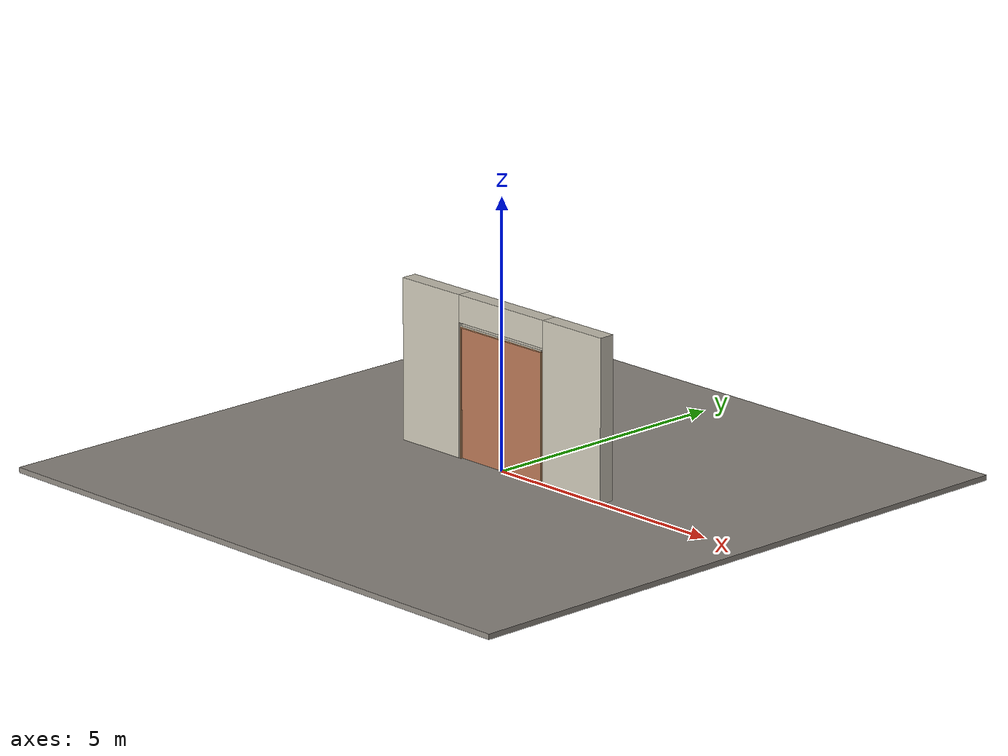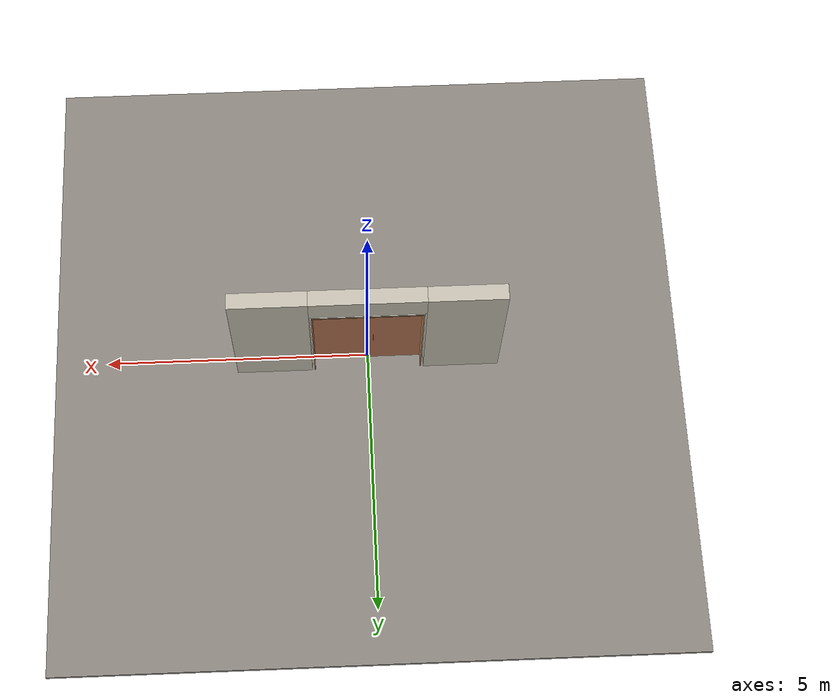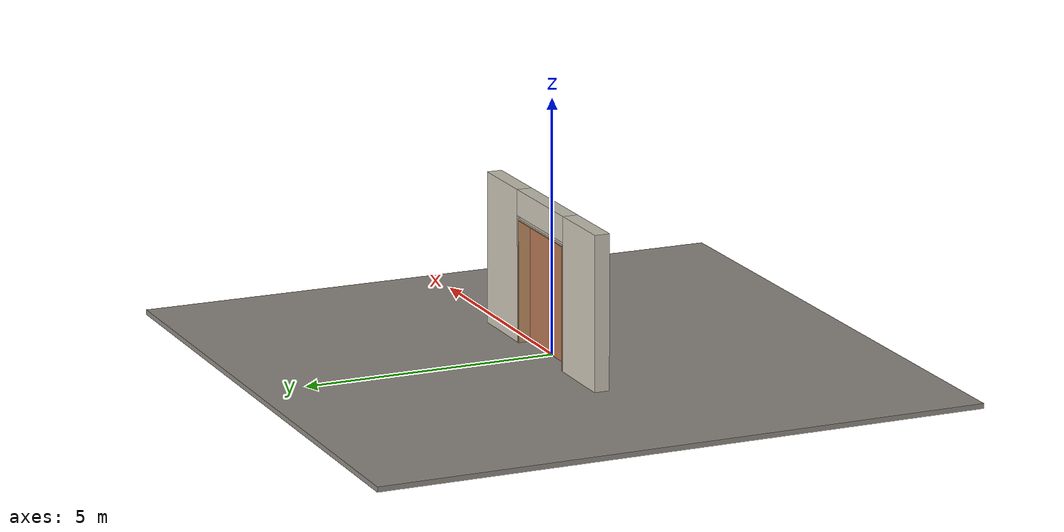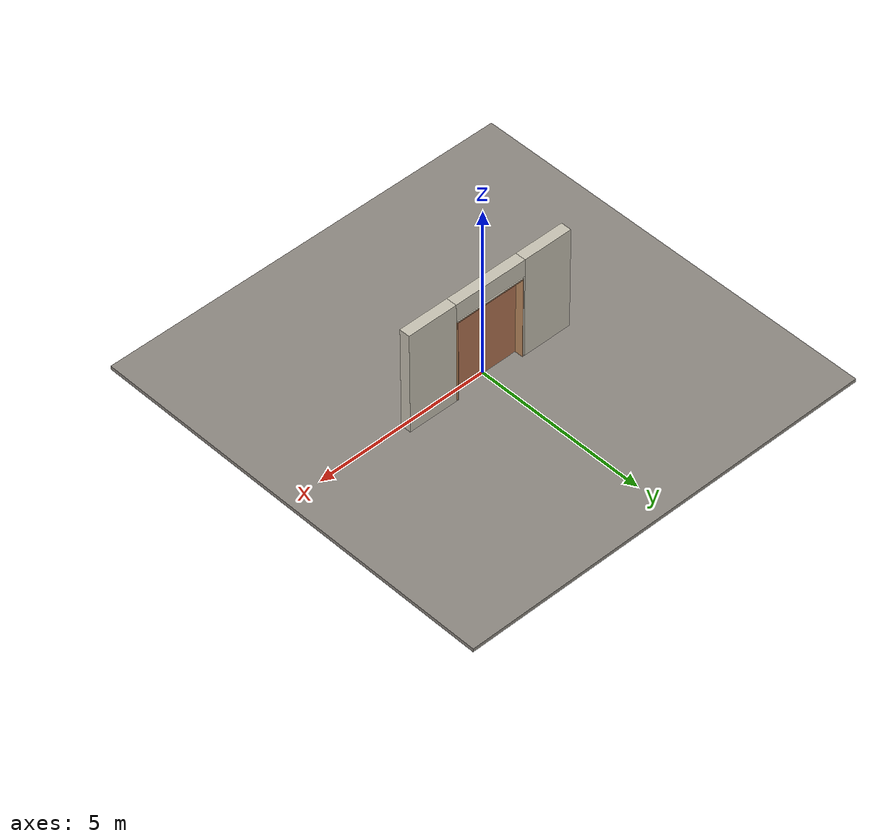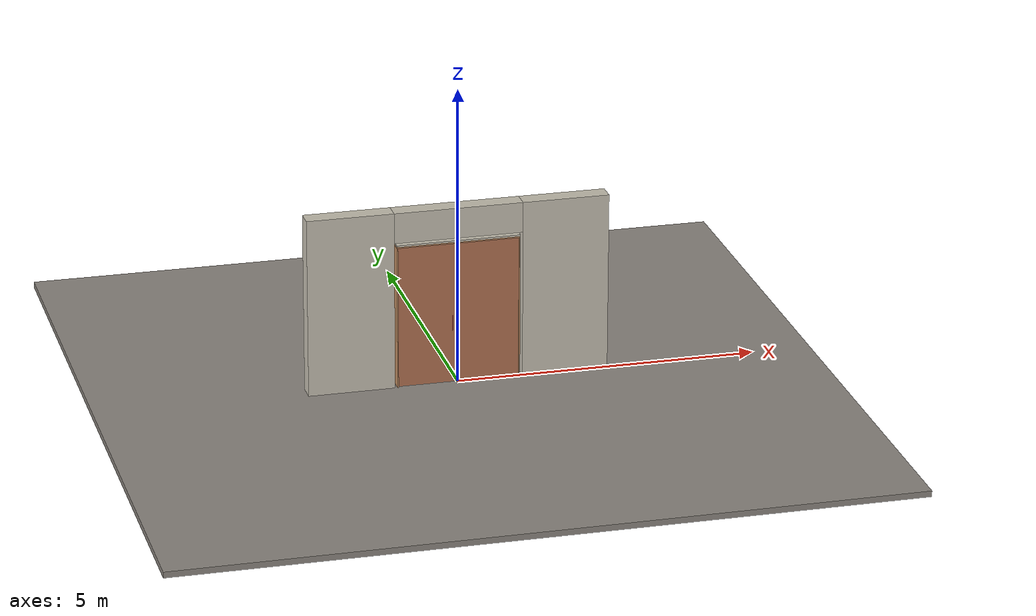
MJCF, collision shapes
<?xml version="1.0" ?>
<mujoco model="db0467_swing_double_minimal">
  <compiler angle="radian" meshdir="../../hardware" texturedir="../../textures" autolimits="true" inertiafromgeom="false"/>
  <option timestep="0.002" integrator="implicitfast" cone="elliptic" impratio="10" noslip_iterations="3">
    <flag multiccd="enable"/>
  </option>
  <size memory="16M"/>
  <default>
    <geom condim="4" solref="0.005 1" solimp="0.95 0.99 0.001"/>
    <joint solreflimit="0.005 1" solimplimit="0.95 0.99 0.001"/>
    <tendon solreflimit="0.005 1"/>
    <equality solref="0.002 1"/>
  </default>
  <visual>
    <headlight ambient="0.4 0.4 0.4" diffuse="0.7 0.7 0.7" specular="0.2 0.2 0.2"/>
    <quality shadowsize="4096"/>
    <map znear="0.01" zfar="60"/>
  </visual>
  <asset>
    <mesh name="pull_2b47e55ff8" file="pull_2b47e55ff8.obj"/>
    <material name="mat_floor" rgba="0.55 0.53 0.5 1" specular="0.2" shininess="0.15" reflectance="0"/>
    <material name="mat_wall" rgba="0.78 0.76 0.7 1" specular="0.2" shininess="0.1" reflectance="0"/>
    <material name="mat_leaf_a" rgba="0.7 0.45 0.32 1" specular="0.2" shininess="0.4" reflectance="0"/>
    <material name="mat_leaf_a_brace" rgba="0.63 0.405 0.288 1" specular="0.2" shininess="0.2" reflectance="0"/>
    <material name="mat_hinge" rgba="0.65 0.66 0.68 1" specular="0.74" shininess="0.5" reflectance="0.36"/>
    <material name="mat_op_black_matte_metal" rgba="0.05 0.05 0.05 1" specular="0.38" shininess="0.3" reflectance="0.12"/>
    <material name="mat_leaf_b" rgba="0.7 0.45 0.32 1" specular="0.2" shininess="0.4" reflectance="0"/>
    <material name="mat_leaf_b_brace" rgba="0.63 0.405 0.288 1" specular="0.2" shininess="0.2" reflectance="0"/>
    <material name="mat_frame" rgba="0.75 0.55 0.38 1" specular="0.2" shininess="0.45" reflectance="0"/>
    <texture name="skybox" type="skybox" builtin="gradient" rgb1="0.6 0.7 0.85" rgb2="0.9 0.92 0.95" width="256" height="256"/>
  </asset>
  <worldbody>
    <light name="sun" pos="1.5 -2.5 4" dir="-0.3 0.5 -0.8" directional="true" diffuse="0.8 0.8 0.8" specular="0.3 0.3 0.3" castshadow="true"/>
    <light name="fill" pos="-1.5 2.5 3" dir="0.3 -0.5 -0.7" directional="true" diffuse="0.35 0.35 0.4" castshadow="false"/>
    <camera name="robot_view" pos="0 -2.779187 2.014912" xyaxes="1 0 0 0 0.26963 0.962964" fovy="52"/>
    <camera name="far_view" pos="0 2.995187 2.014912" xyaxes="-1 0 0 0 -0.26963 0.962964" fovy="52"/>
    <camera name="iso" pos="-2.194262 -2.317237 2.476863" xyaxes="0.741536 -0.670913 0 0.242917 0.268487 0.932151" fovy="46"/>
    <camera name="detail_handle" pos="0.0735 -0.867 1.33" xyaxes="0.97561 0.219512 0 -0.070934 0.315262 0.94635" fovy="38"/>
    <geom name="floor" type="box" size="6 6 0.05" pos="0 0 -0.05" material="mat_floor" group="0" contype="1" conaffinity="1" friction="0.8 0.005 0.0001" density="2400"/>
    <geom name="wall_left" type="box" size="0.71775 0.15 1.5065" pos="-1.78225 0.108 1.5065" material="mat_wall" group="0" contype="1" conaffinity="1" friction="0.6 0.005 0.0001" density="800"/>
    <geom name="wall_right" type="box" size="0.71775 0.15 1.5065" pos="1.78225 0.108 1.5065" material="mat_wall" group="0" contype="1" conaffinity="1" friction="0.6 0.005 0.0001" density="800"/>
    <geom name="wall_header" type="box" size="1.0645 0.15 0.255" pos="0 0.108 2.758" material="mat_wall" group="0" contype="1" conaffinity="1" friction="0.6 0.005 0.0001" density="800"/>
    <geom name="jamb_l" type="box" size="0.0095 0.15 1.2065" pos="-1.014 0.108 1.2065" material="mat_frame" group="0" contype="1" conaffinity="1" friction="0.6 0.005 0.0001" density="300"/>
    <geom name="jamb_r" type="box" size="0.0095 0.15 1.2065" pos="1.014 0.108 1.2065" material="mat_frame" group="0" contype="1" conaffinity="1" friction="0.6 0.005 0.0001" density="300"/>
    <geom name="jamb_head" type="box" size="1.0235 0.15 0.0095" pos="0 0.108 2.4225" material="mat_frame" group="0" contype="1" conaffinity="1" friction="0.6 0.005 0.0001" density="300"/>
    <geom name="head_stud" type="box" size="1.0235 0.15 0.015" pos="0 0.108 2.447" material="mat_wall" group="0" contype="1" conaffinity="1" friction="0.6 0.005 0.0001" density="500"/>
    <site name="approach_point" pos="0 -1.5 0" quat="1 0 0 0" size="0.05" rgba="0.2 0.9 0.2 0.5" group="4"/>
    <site name="goal_point" pos="0 1.5 0" quat="1 0 0 0" size="0.05" rgba="0.2 0.9 0.2 0.5" group="4"/>
    <site name="door_plane_center" pos="0 0 1.2065" quat="1 0 0 0" size="0.02" rgba="0.2 0.9 0.2 0.5" group="4"/>
    <site name="approach_point_2" pos="0 -1.5 0" quat="1 0 0 0" size="0.05" rgba="0.2 0.9 0.2 0.5" group="4"/>
    <site name="goal_point_2" pos="0 1.5 0" quat="1 0 0 0" size="0.05" rgba="0.2 0.9 0.2 0.5" group="4"/>
    <site name="door_plane_center_2" pos="0 0 1.2065" quat="1 0 0 0" size="0.02" rgba="0.2 0.9 0.2 0.5" group="4"/>
    <site name="approach_point_3" pos="0 -1.5 0" quat="1 0 0 0" size="0.05" rgba="0.2 0.9 0.2 0.5" group="4"/>
    <site name="goal_point_3" pos="0 1.5 0" quat="1 0 0 0" size="0.05" rgba="0.2 0.9 0.2 0.5" group="4"/>
    <site name="door_plane_center_3" pos="0 0 1.2065" quat="1 0 0 0" size="0.02" rgba="0.2 0.9 0.2 0.5" group="4"/>
    <body name="leaf_a" pos="-1.0045 0 0">
      <inertial pos="0.513287 0 1.204859" mass="39.041292" quat="0.501038 0.501038 0.49896 -0.49896" diaginertia="3.332902182 18.297652232 21.610812581"/>
      <joint name="leaf_a_hinge" type="hinge" axis="0 0 -1" pos="0.003 -0.029 0" limited="true" range="0 1.396263" damping="0.48344" frictionloss="10.213386" armature="0.02"/>
      <geom name="leaf_a_slab" type="box" size="0.5 0.022 1.2" pos="0.503 0 1.209" material="mat_leaf_a" group="0" contype="1" conaffinity="1" friction="0.35 0.005 0.0001" density="1"/>
      <geom name="leaf_a_pull_n" type="mesh" mesh="pull_2b47e55ff8" pos="0.898 -0.022 1.05" quat="0.707107 0.707107 0 0" material="mat_op_black_matte_metal" group="1" contype="0" conaffinity="0" density="3000"/>
      <geom name="leaf_a_pull_col_n" type="capsule" size="0.006 0.13" pos="0.898 -0.067 1.05" material="mat_op_black_matte_metal" group="3" contype="1" conaffinity="1" rgba="0.8 0.3 0.3 0.25" friction="0.7 0.01 0.0001" density="3000"/>
      <geom name="leaf_a_pull_p" type="mesh" mesh="pull_2b47e55ff8" pos="0.898 0.022 1.05" quat="-0.707107 0.707107 0 0" material="mat_op_black_matte_metal" group="1" contype="0" conaffinity="0" density="3000"/>
      <geom name="leaf_a_pull_col_p" type="capsule" size="0.006 0.13" pos="0.898 0.067 1.05" material="mat_op_black_matte_metal" group="3" contype="1" conaffinity="1" rgba="0.8 0.3 0.3 0.25" friction="0.7 0.01 0.0001" density="3000"/>
      <site name="leaf_a_pull_grip_n" pos="0.898 -0.067 1.05" quat="1 0 0 0" size="0.012" rgba="0.2 0.9 0.2 0.5" group="4"/>
      <site name="leaf_a_pull_grip_p" pos="0.898 0.067 1.05" quat="1 0 0 0" size="0.012" rgba="0.2 0.9 0.2 0.5" group="4"/>
      <site name="leaf_a_edge_mid" pos="1.003 0 1.2" quat="1 0 0 0" size="0.02" rgba="0.2 0.9 0.2 0.5" group="4"/>
    </body>
    <body name="leaf_b" pos="1.0045 0 0">
      <inertial pos="-0.503 0 1.209" mass="38.928708" quat="-0.5 0.5 0.5 0.5" diaginertia="3.250339494 18.692060312 21.929838809"/>
      <joint name="leaf_b_hinge" type="hinge" axis="0 0 1" pos="-0.003 -0.029 0" limited="true" range="0 0.001" damping="0.48344" frictionloss="10.213386" armature="0.02"/>
      <geom name="leaf_b_slab" type="box" size="0.5 0.022 1.2" pos="-0.503 0 1.209" material="mat_leaf_b" group="0" contype="1" conaffinity="1" friction="0.35 0.005 0.0001" density="1"/>
      <site name="leaf_b_edge_mid" pos="-1.003 0 1.2" quat="1 0 0 0" size="0.02" rgba="0.2 0.9 0.2 0.5" group="4"/>
    </body>
  </worldbody>
  <sensor>
    <jointpos name="leaf_a_hinge_pos" joint="leaf_a_hinge"/>
    <jointvel name="leaf_a_hinge_vel" joint="leaf_a_hinge"/>
    <jointpos name="leaf_b_hinge_pos" joint="leaf_b_hinge"/>
    <jointvel name="leaf_b_hinge_vel" joint="leaf_b_hinge"/>
  </sensor>
</mujoco>
